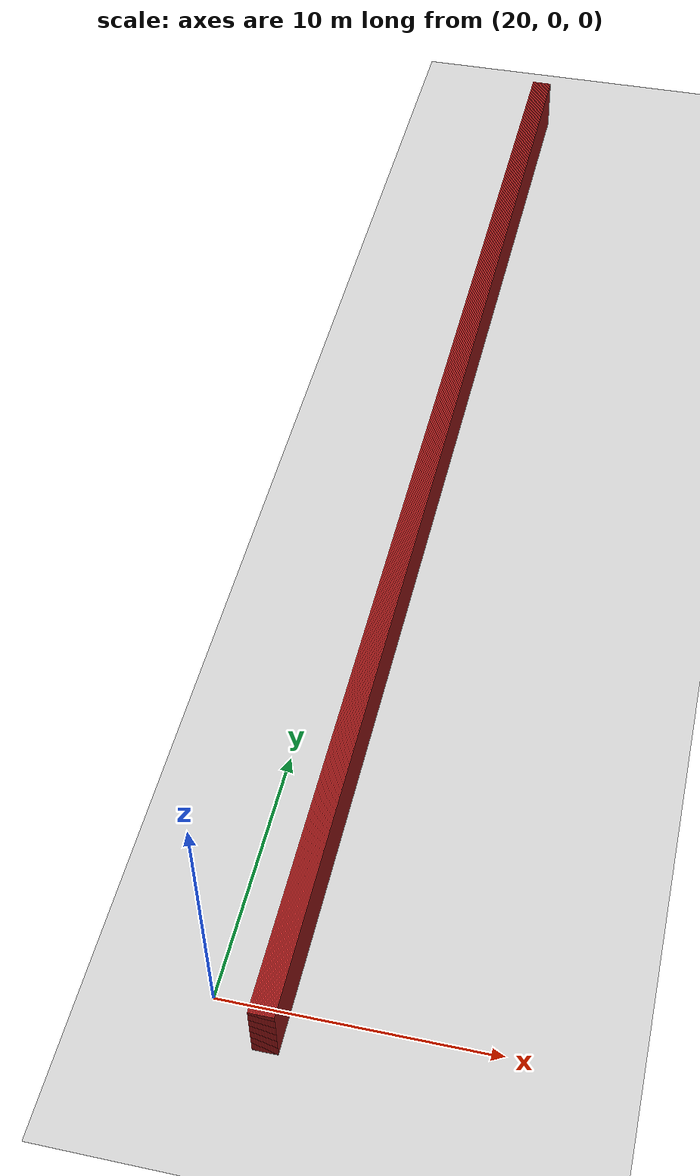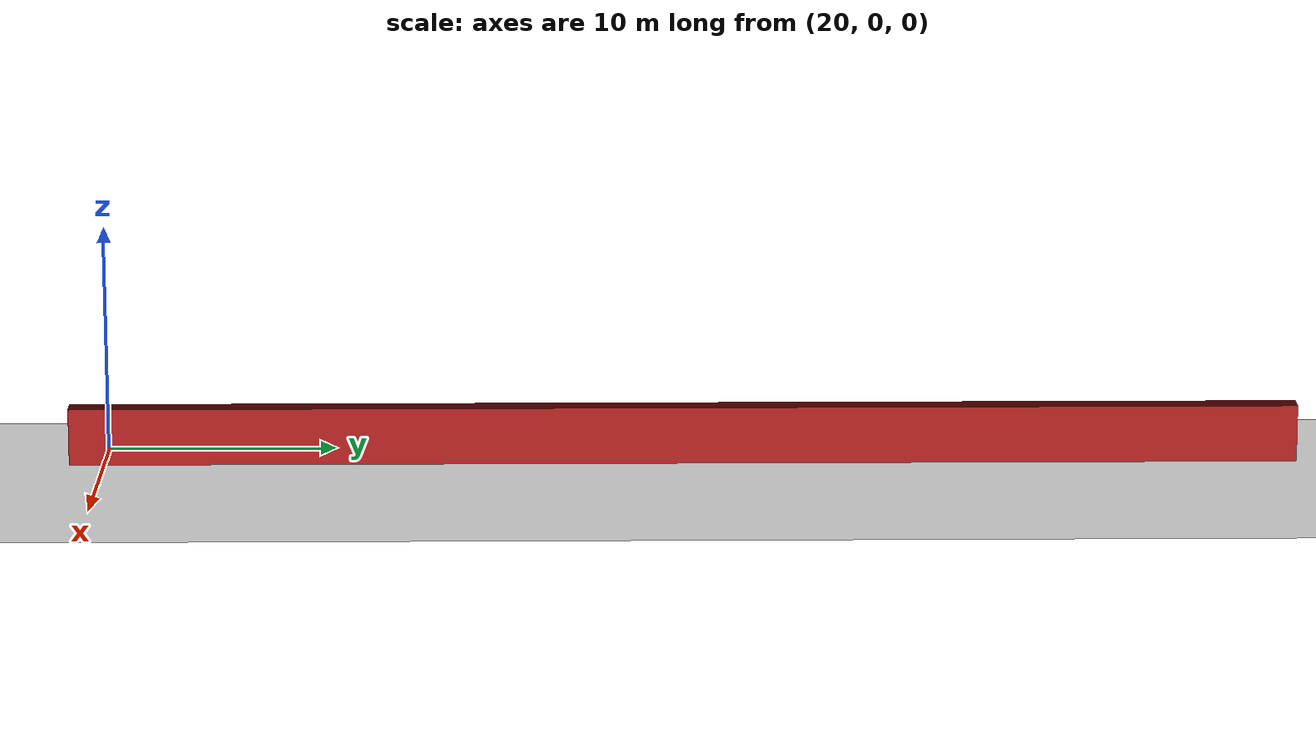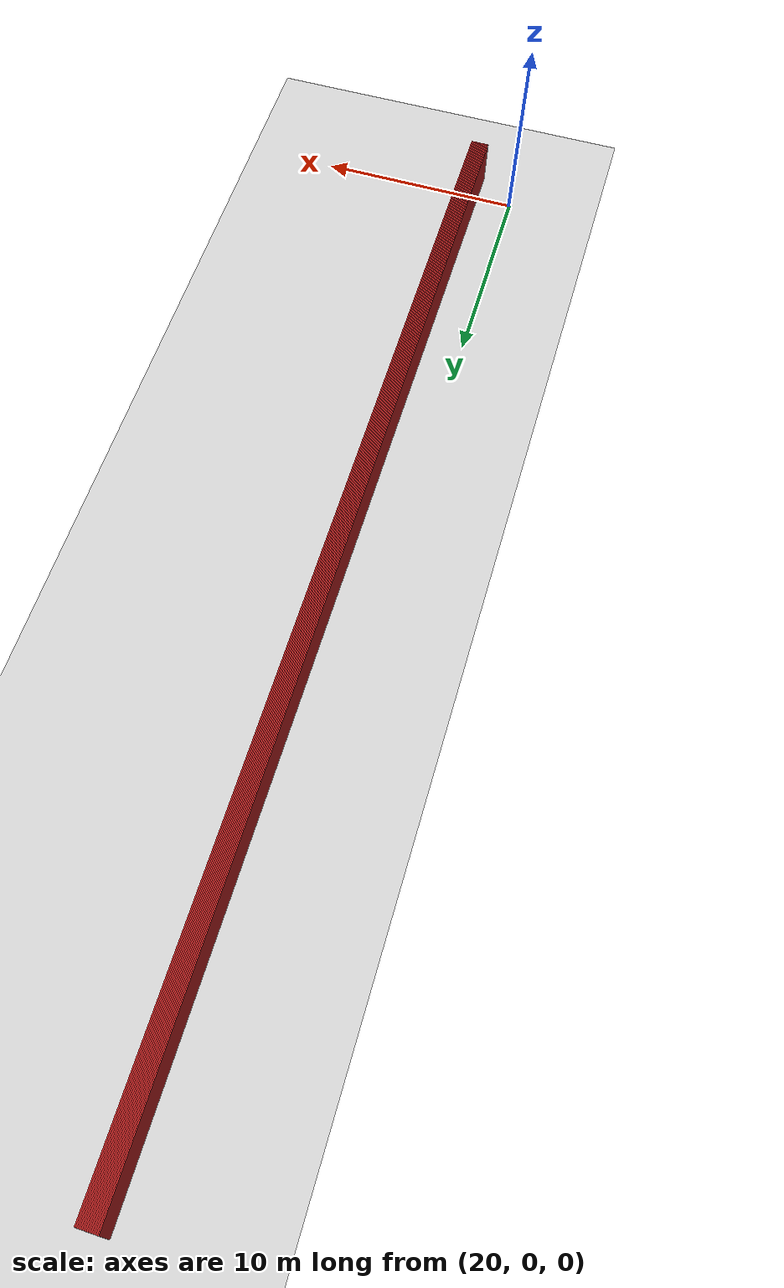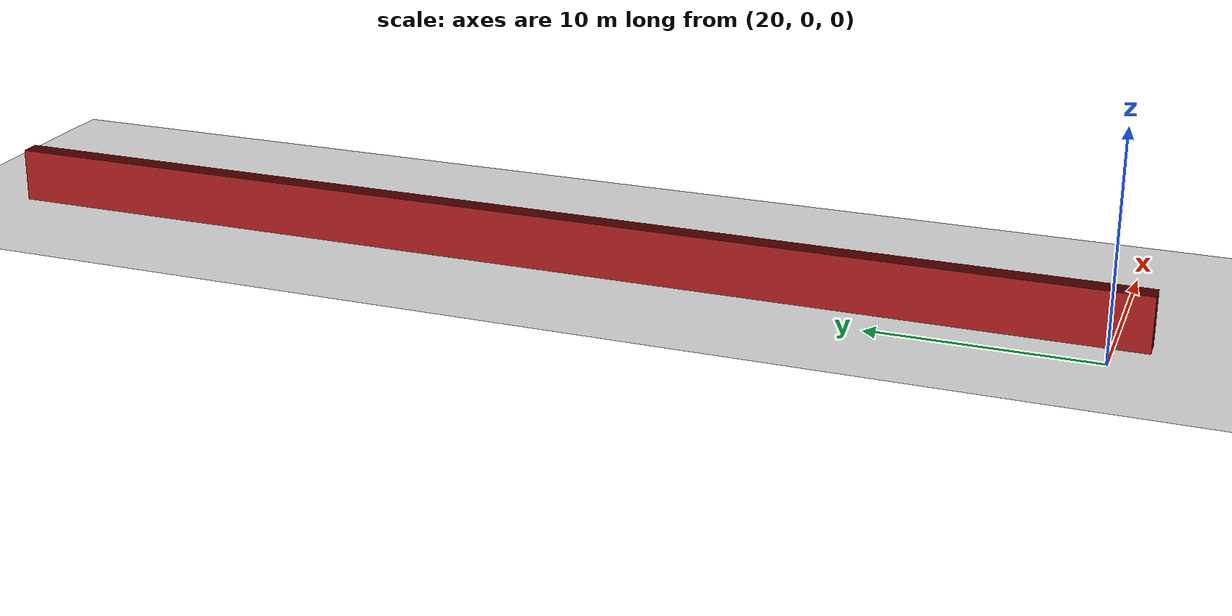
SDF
<sdf version="1.4">
 <world name="1_wall">
  <model name="ground_plane">
   <static>1</static>
   <link name="link">
    <collision name="collision">
     <geometry><plane><normal>0 0 1</normal><size>1000 1000</size></plane></geometry>
     <surface><friction><ode><mu>100</mu><mu2>50</mu2></ode></friction></surface>
    </collision>
    <visual name="visual">
     <cast_shadows>0</cast_shadows>
     <geometry><plane><normal>0 0 1</normal><size>10000 10000</size></plane></geometry>
     <material>
      <script><uri>file://media/materials/scripts/gazebo.material</uri><name>Gazebo/Grey</name></script>
     </material>
    </visual>
    <velocity_decay><linear>0</linear><angular>0</angular></velocity_decay>
   </link>
  </model>
  <model name="Wall_466">
   <static>1</static>
   <link name="Wall_466">
    <collision name="Wall_Collision_466">
     <geometry><box><size>53.65 0.05 2.5</size></box></geometry>
     <pose>0 0 1.25 0 -0 0</pose>
    </collision>
    <visual name="Wall_Visual_466">
     <pose>0 0 1.25 0 -0 0</pose>
     <geometry><box><size>53.65 0.05 2.5</size></box></geometry>
     <material>
      <script><uri>file://media/materials/scripts/gazebo.material</uri><name>Gazebo/Red</name></script>
     </material>
    </visual>
    <velocity_decay><linear>0</linear><angular>0</angular></velocity_decay>
    <pose>21.8 25.3 0 0 0 1.5707963267948966</pose>
   </link>
  </model>
  <model name="Wall_467">
   <static>1</static>
   <link name="Wall_467">
    <collision name="Wall_Collision_467">
     <geometry><box><size>53.65 0.05 2.5</size></box></geometry>
     <pose>0 0 1.25 0 -0 0</pose>
    </collision>
    <visual name="Wall_Visual_467">
     <pose>0 0 1.25 0 -0 0</pose>
     <geometry><box><size>53.65 0.05 2.5</size></box></geometry>
     <material>
      <script><uri>file://media/materials/scripts/gazebo.material</uri><name>Gazebo/Red</name></script>
     </material>
    </visual>
    <velocity_decay><linear>0</linear><angular>0</angular></velocity_decay>
    <pose>21.85 25.3 0 0 0 1.5707963267948966</pose>
   </link>
  </model>
  <model name="Wall_468">
   <static>1</static>
   <link name="Wall_468">
    <collision name="Wall_Collision_468">
     <geometry><box><size>53.65 0.05 2.5</size></box></geometry>
     <pose>0 0 1.25 0 -0 0</pose>
    </collision>
    <visual name="Wall_Visual_468">
     <pose>0 0 1.25 0 -0 0</pose>
     <geometry><box><size>53.65 0.05 2.5</size></box></geometry>
     <material>
      <script><uri>file://media/materials/scripts/gazebo.material</uri><name>Gazebo/Red</name></script>
     </material>
    </visual>
    <velocity_decay><linear>0</linear><angular>0</angular></velocity_decay>
    <pose>21.9 25.3 0 0 0 1.5707963267948966</pose>
   </link>
  </model>
  <model name="Wall_469">
   <static>1</static>
   <link name="Wall_469">
    <collision name="Wall_Collision_469">
     <geometry><box><size>53.65 0.05 2.5</size></box></geometry>
     <pose>0 0 1.25 0 -0 0</pose>
    </collision>
    <visual name="Wall_Visual_469">
     <pose>0 0 1.25 0 -0 0</pose>
     <geometry><box><size>53.65 0.05 2.5</size></box></geometry>
     <material>
      <script><uri>file://media/materials/scripts/gazebo.material</uri><name>Gazebo/Red</name></script>
     </material>
    </visual>
    <velocity_decay><linear>0</linear><angular>0</angular></velocity_decay>
    <pose>21.95 25.3 0 0 0 1.5707963267948966</pose>
   </link>
  </model>
  <model name="Wall_470">
   <static>1</static>
   <link name="Wall_470">
    <collision name="Wall_Collision_470">
     <geometry><box><size>53.65 0.05 2.5</size></box></geometry>
     <pose>0 0 1.25 0 -0 0</pose>
    </collision>
    <visual name="Wall_Visual_470">
     <pose>0 0 1.25 0 -0 0</pose>
     <geometry><box><size>53.65 0.05 2.5</size></box></geometry>
     <material>
      <script><uri>file://media/materials/scripts/gazebo.material</uri><name>Gazebo/Red</name></script>
     </material>
    </visual>
    <velocity_decay><linear>0</linear><angular>0</angular></velocity_decay>
    <pose>22.0 25.3 0 0 0 1.5707963267948966</pose>
   </link>
  </model>
  <model name="Wall_471">
   <static>1</static>
   <link name="Wall_471">
    <collision name="Wall_Collision_471">
     <geometry><box><size>53.65 0.05 2.5</size></box></geometry>
     <pose>0 0 1.25 0 -0 0</pose>
    </collision>
    <visual name="Wall_Visual_471">
     <pose>0 0 1.25 0 -0 0</pose>
     <geometry><box><size>53.65 0.05 2.5</size></box></geometry>
     <material>
      <script><uri>file://media/materials/scripts/gazebo.material</uri><name>Gazebo/Red</name></script>
     </material>
    </visual>
    <velocity_decay><linear>0</linear><angular>0</angular></velocity_decay>
    <pose>22.05 25.3 0 0 0 1.5707963267948966</pose>
   </link>
  </model>
  <model name="Wall_472">
   <static>1</static>
   <link name="Wall_472">
    <collision name="Wall_Collision_472">
     <geometry><box><size>53.65 0.05 2.5</size></box></geometry>
     <pose>0 0 1.25 0 -0 0</pose>
    </collision>
    <visual name="Wall_Visual_472">
     <pose>0 0 1.25 0 -0 0</pose>
     <geometry><box><size>53.65 0.05 2.5</size></box></geometry>
     <material>
      <script><uri>file://media/materials/scripts/gazebo.material</uri><name>Gazebo/Red</name></script>
     </material>
    </visual>
    <velocity_decay><linear>0</linear><angular>0</angular></velocity_decay>
    <pose>22.1 25.3 0 0 0 1.5707963267948966</pose>
   </link>
  </model>
  <model name="Wall_473">
   <static>1</static>
   <link name="Wall_473">
    <collision name="Wall_Collision_473">
     <geometry><box><size>53.65 0.05 2.5</size></box></geometry>
     <pose>0 0 1.25 0 -0 0</pose>
    </collision>
    <visual name="Wall_Visual_473">
     <pose>0 0 1.25 0 -0 0</pose>
     <geometry><box><size>53.65 0.05 2.5</size></box></geometry>
     <material>
      <script><uri>file://media/materials/scripts/gazebo.material</uri><name>Gazebo/Red</name></script>
     </material>
    </visual>
    <velocity_decay><linear>0</linear><angular>0</angular></velocity_decay>
    <pose>22.15 25.3 0 0 0 1.5707963267948966</pose>
   </link>
  </model>
  <model name="Wall_474">
   <static>1</static>
   <link name="Wall_474">
    <collision name="Wall_Collision_474">
     <geometry><box><size>53.65 0.05 2.5</size></box></geometry>
     <pose>0 0 1.25 0 -0 0</pose>
    </collision>
    <visual name="Wall_Visual_474">
     <pose>0 0 1.25 0 -0 0</pose>
     <geometry><box><size>53.65 0.05 2.5</size></box></geometry>
     <material>
      <script><uri>file://media/materials/scripts/gazebo.material</uri><name>Gazebo/Red</name></script>
     </material>
    </visual>
    <velocity_decay><linear>0</linear><angular>0</angular></velocity_decay>
    <pose>22.2 25.3 0 0 0 1.5707963267948966</pose>
   </link>
  </model>
  <model name="Wall_475">
   <static>1</static>
   <link name="Wall_475">
    <collision name="Wall_Collision_475">
     <geometry><box><size>53.65 0.05 2.5</size></box></geometry>
     <pose>0 0 1.25 0 -0 0</pose>
    </collision>
    <visual name="Wall_Visual_475">
     <pose>0 0 1.25 0 -0 0</pose>
     <geometry><box><size>53.65 0.05 2.5</size></box></geometry>
     <material>
      <script><uri>file://media/materials/scripts/gazebo.material</uri><name>Gazebo/Red</name></script>
     </material>
    </visual>
    <velocity_decay><linear>0</linear><angular>0</angular></velocity_decay>
    <pose>22.25 25.3 0 0 0 1.5707963267948966</pose>
   </link>
  </model>
  <model name="Wall_476">
   <static>1</static>
   <link name="Wall_476">
    <collision name="Wall_Collision_476">
     <geometry><box><size>53.65 0.05 2.5</size></box></geometry>
     <pose>0 0 1.25 0 -0 0</pose>
    </collision>
    <visual name="Wall_Visual_476">
     <pose>0 0 1.25 0 -0 0</pose>
     <geometry><box><size>53.65 0.05 2.5</size></box></geometry>
     <material>
      <script><uri>file://media/materials/scripts/gazebo.material</uri><name>Gazebo/Red</name></script>
     </material>
    </visual>
    <velocity_decay><linear>0</linear><angular>0</angular></velocity_decay>
    <pose>22.3 25.3 0 0 0 1.5707963267948966</pose>
   </link>
  </model>
  <model name="Wall_477">
   <static>1</static>
   <link name="Wall_477">
    <collision name="Wall_Collision_477">
     <geometry><box><size>53.65 0.05 2.5</size></box></geometry>
     <pose>0 0 1.25 0 -0 0</pose>
    </collision>
    <visual name="Wall_Visual_477">
     <pose>0 0 1.25 0 -0 0</pose>
     <geometry><box><size>53.65 0.05 2.5</size></box></geometry>
     <material>
      <script><uri>file://media/materials/scripts/gazebo.material</uri><name>Gazebo/Red</name></script>
     </material>
    </visual>
    <velocity_decay><linear>0</linear><angular>0</angular></velocity_decay>
    <pose>22.35 25.3 0 0 0 1.5707963267948966</pose>
   </link>
  </model>
  <model name="Wall_478">
   <static>1</static>
   <link name="Wall_478">
    <collision name="Wall_Collision_478">
     <geometry><box><size>53.65 0.05 2.5</size></box></geometry>
     <pose>0 0 1.25 0 -0 0</pose>
    </collision>
    <visual name="Wall_Visual_478">
     <pose>0 0 1.25 0 -0 0</pose>
     <geometry><box><size>53.65 0.05 2.5</size></box></geometry>
     <material>
      <script><uri>file://media/materials/scripts/gazebo.material</uri><name>Gazebo/Red</name></script>
     </material>
    </visual>
    <velocity_decay><linear>0</linear><angular>0</angular></velocity_decay>
    <pose>22.4 25.3 0 0 0 1.5707963267948966</pose>
   </link>
  </model>
  <model name="Wall_479">
   <static>1</static>
   <link name="Wall_479">
    <collision name="Wall_Collision_479">
     <geometry><box><size>53.65 0.05 2.5</size></box></geometry>
     <pose>0 0 1.25 0 -0 0</pose>
    </collision>
    <visual name="Wall_Visual_479">
     <pose>0 0 1.25 0 -0 0</pose>
     <geometry><box><size>53.65 0.05 2.5</size></box></geometry>
     <material>
      <script><uri>file://media/materials/scripts/gazebo.material</uri><name>Gazebo/Red</name></script>
     </material>
    </visual>
    <velocity_decay><linear>0</linear><angular>0</angular></velocity_decay>
    <pose>22.45 25.3 0 0 0 1.5707963267948966</pose>
   </link>
  </model>
  <model name="Wall_480">
   <static>1</static>
   <link name="Wall_480">
    <collision name="Wall_Collision_480">
     <geometry><box><size>53.65 0.05 2.5</size></box></geometry>
     <pose>0 0 1.25 0 -0 0</pose>
    </collision>
    <visual name="Wall_Visual_480">
     <pose>0 0 1.25 0 -0 0</pose>
     <geometry><box><size>53.65 0.05 2.5</size></box></geometry>
     <material>
      <script><uri>file://media/materials/scripts/gazebo.material</uri><name>Gazebo/Red</name></script>
     </material>
    </visual>
    <velocity_decay><linear>0</linear><angular>0</angular></velocity_decay>
    <pose>22.5 25.3 0 0 0 1.5707963267948966</pose>
   </link>
  </model>
  <model name="Wall_481">
   <static>1</static>
   <link name="Wall_481">
    <collision name="Wall_Collision_481">
     <geometry><box><size>53.65 0.05 2.5</size></box></geometry>
     <pose>0 0 1.25 0 -0 0</pose>
    </collision>
    <visual name="Wall_Visual_481">
     <pose>0 0 1.25 0 -0 0</pose>
     <geometry><box><size>53.65 0.05 2.5</size></box></geometry>
     <material>
      <script><uri>file://media/materials/scripts/gazebo.material</uri><name>Gazebo/Red</name></script>
     </material>
    </visual>
    <velocity_decay><linear>0</linear><angular>0</angular></velocity_decay>
    <pose>22.55 25.3 0 0 0 1.5707963267948966</pose>
   </link>
  </model>
  <model name="Wall_482">
   <static>1</static>
   <link name="Wall_482">
    <collision name="Wall_Collision_482">
     <geometry><box><size>53.65 0.05 2.5</size></box></geometry>
     <pose>0 0 1.25 0 -0 0</pose>
    </collision>
    <visual name="Wall_Visual_482">
     <pose>0 0 1.25 0 -0 0</pose>
     <geometry><box><size>53.65 0.05 2.5</size></box></geometry>
     <material>
      <script><uri>file://media/materials/scripts/gazebo.material</uri><name>Gazebo/Red</name></script>
     </material>
    </visual>
    <velocity_decay><linear>0</linear><angular>0</angular></velocity_decay>
    <pose>22.6 25.3 0 0 0 1.5707963267948966</pose>
   </link>
  </model>
  <model name="Wall_483">
   <static>1</static>
   <link name="Wall_483">
    <collision name="Wall_Collision_483">
     <geometry><box><size>53.65 0.05 2.5</size></box></geometry>
     <pose>0 0 1.25 0 -0 0</pose>
    </collision>
    <visual name="Wall_Visual_483">
     <pose>0 0 1.25 0 -0 0</pose>
     <geometry><box><size>53.65 0.05 2.5</size></box></geometry>
     <material>
      <script><uri>file://media/materials/scripts/gazebo.material</uri><name>Gazebo/Red</name></script>
     </material>
    </visual>
    <velocity_decay><linear>0</linear><angular>0</angular></velocity_decay>
    <pose>22.65 25.3 0 0 0 1.5707963267948966</pose>
   </link>
  </model>
 </world>
</sdf>
